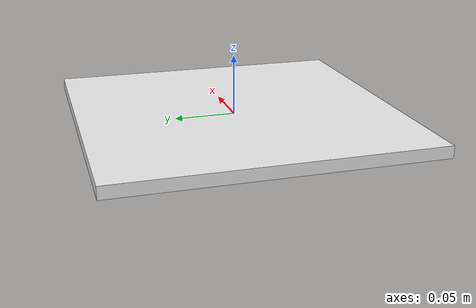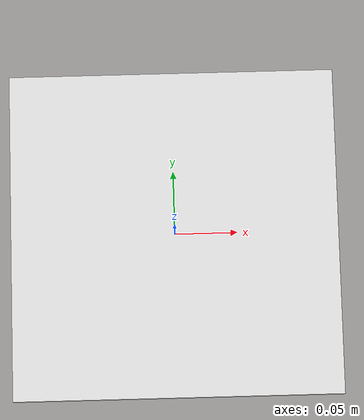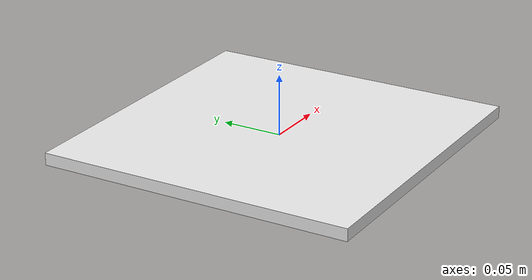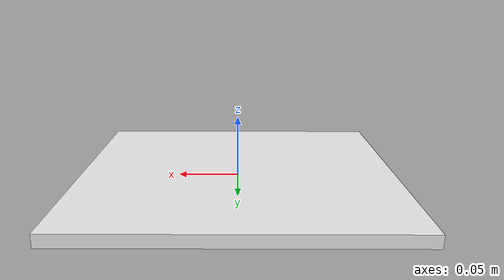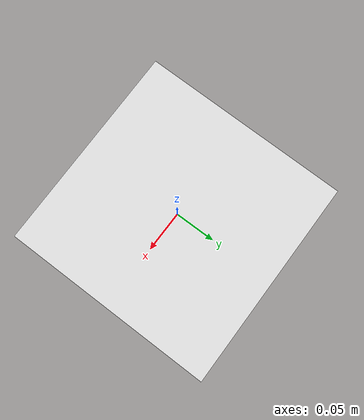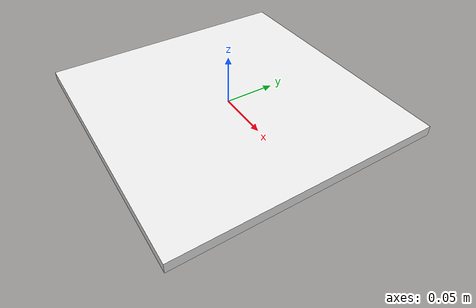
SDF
<?xml version="1.0"?>
<sdf version="1.7">
  <model name="aruco_marker_0">
    <static>true</static>
    <link name="link">
      <collision name="collision">
        <geometry>
          <box>
            <size>0.26 0.26 0.01</size>
          </box>
        </geometry>
      </collision>
      <visual name="visual">
        <geometry>
          <box>
            <size>0.26 0.26 0.01</size>
          </box>
        </geometry>
        <material>
          <script>
            <uri>file://media/materials/scripts/gazebo.material</uri>
            <name>Gazebo/White</name>
          </script>
          <pbr>
            <metal>
              <albedo_map>materials/textures/marker_0.png</albedo_map>
            </metal>
          </pbr>
          <ambient>1 1 1 1</ambient>
          <diffuse>1 1 1 1</diffuse>
          <specular>0.1 0.1 0.1 1</specular>
          <emissive>0 0 0 1</emissive>
        </material>
        <cast_shadows>false</cast_shadows>
      </visual>
    </link>
  </model>
</sdf>
